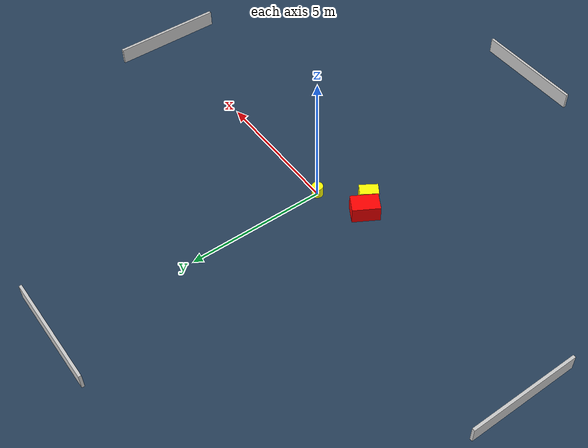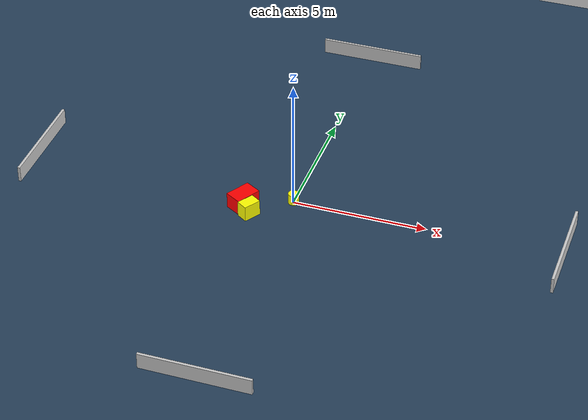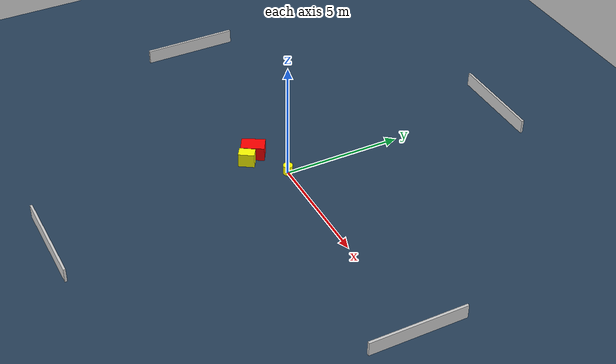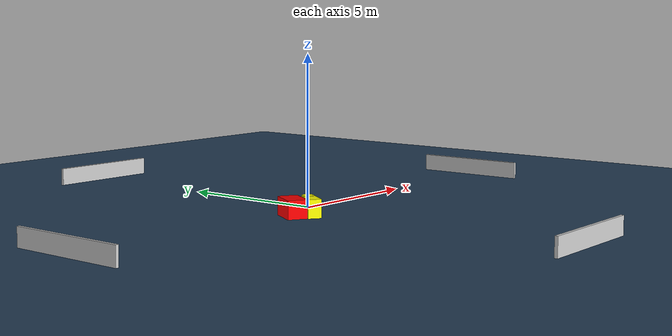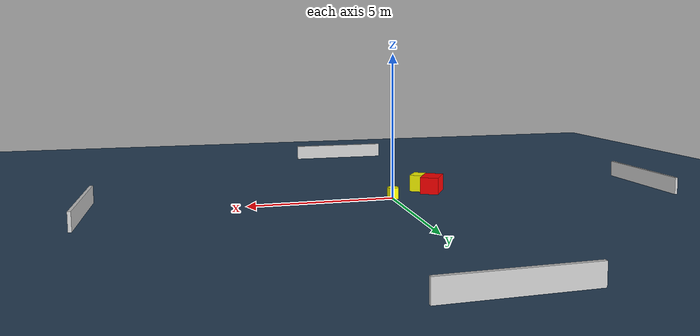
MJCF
<?xml version="1.0" ?>
<mujoco model="generated_environment">
  <option timestep="0.01" integrator="RK4" cone="elliptic"/>
  <default>
    <geom density="1"/>
  </default>
  <asset>
    <texture builtin="gradient" height="3072" name="skybox" rgb1="0.3 0.5 0.7" rgb2="0 0 0" type="skybox" width="512"/>
    <texture builtin="checker" height="300" name="groundplane" rgb1="0.2 0.3 0.4" rgb2="0.1 0.2 0.3" type="2d" width="300"/>
    <material name="groundplane" reflectance="0.2" texrepeat="5 5" texture="groundplane"/>
  </asset>
  <worldbody>
    <light dir="0 0 -1" directional="true" pos="0 0 1.5"/>
    <geom condim="3" friction="0.5 0.005 0.001" material="groundplane" name="floor" pos="0 0 0" size="0 0 0.05" type="plane"/>
    <body name="walls">
      <geom name="wall_1" condim="4" pos="-10.0 0.0 0.3" rgba="0.800000011920929 0.800000011920929 0.800000011920929 1.0" size="0.05 2.0 0.3" type="box"/>
      <geom name="wall_2" condim="4" pos="10.0 0.0 0.3" rgba="0.800000011920929 0.800000011920929 0.800000011920929 1.0" size="0.05 2.0 0.3" type="box"/>
      <geom name="wall_3" condim="4" pos="0.0 -10.0 0.3" rgba="0.800000011920929 0.800000011920929 0.800000011920929 1.0" size="2.0 0.05 0.3" type="box"/>
      <geom name="wall_4" condim="4" pos="0.0 10.0 0.3" rgba="0.800000011920929 0.800000011920929 0.800000011920929 1.0" size="2.0 0.05 0.3" type="box"/>
    </body>
    <body name="robot">
      <joint name="joint_x" type="slide" pos="0 0 0" axis="1 0 0"/>
      <joint name="joint_y" type="slide" pos="0 0 0" axis="0 1 0"/>
      <geom name="robot" type="cylinder" pos="0.0 0.0 0.2" size="0.2 0.2 0.0" mass="5.0" friction="1.0 0.005 0.0001" condim="4" rgba="1.0 1.0 0.0 1.0"/>
    </body>
    <body name="obstacle_1_movable">
      <geom name="obstacle_1_movable" condim="4" pos="-1.2902985816048638 -1.2123751547044748 0.3" euler="0 0 237.10455836117637" friction="0.0 0.005 0.001" rgba="1.0 1.0 0.0 1.0" size="0.3326181745131537 0.21992439125704089 0.3" type="box" mass="0.1"/>
      <joint type="free"/>
    </body>
    <body name="obstacle_2_static">
      <geom name="obstacle_2_static" condim="4" pos="-1.674720306115685 -0.7532091414178763 0.3" euler="0 0 239.86309050695925" friction="0.0 0.005 0.001" rgba="1.0 0.0 0.0 1.0" size="0.4898553069111438 0.3269872659074107 0.3" type="box"/>
    </body>
  </worldbody>
  <actuator>
    <motor name="actuator_x" joint="joint_x" gear="1" ctrlrange="-1 1"/>
    <motor name="actuator_y" joint="joint_y" gear="1" ctrlrange="-1 1"/>
  </actuator>
</mujoco>
